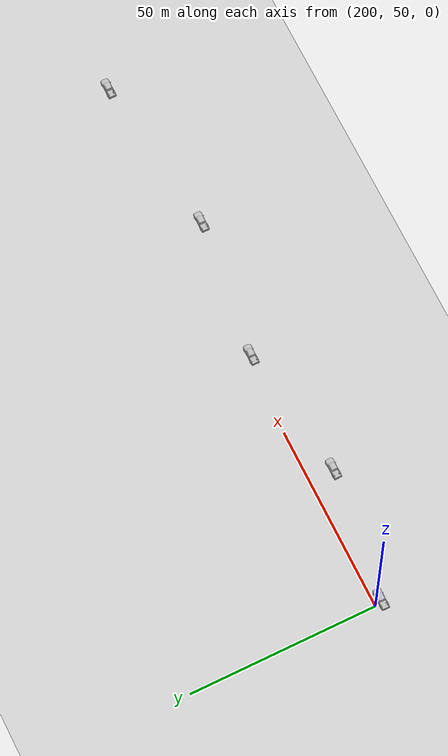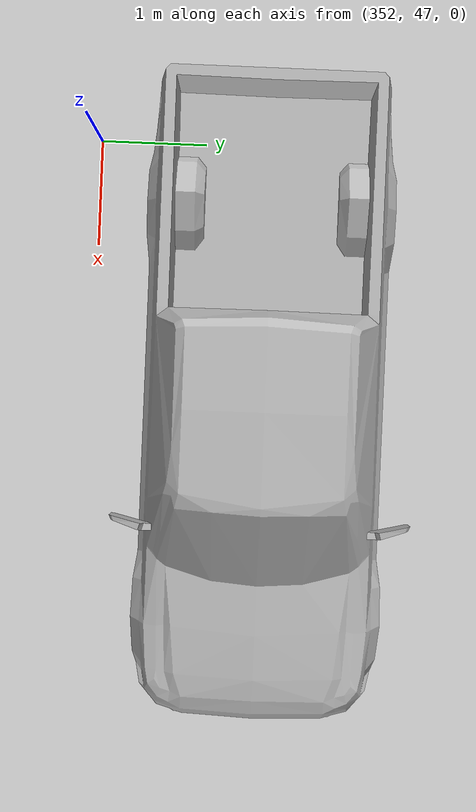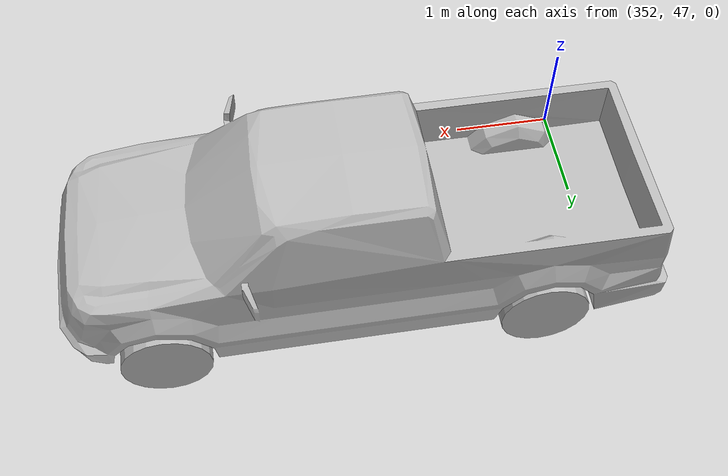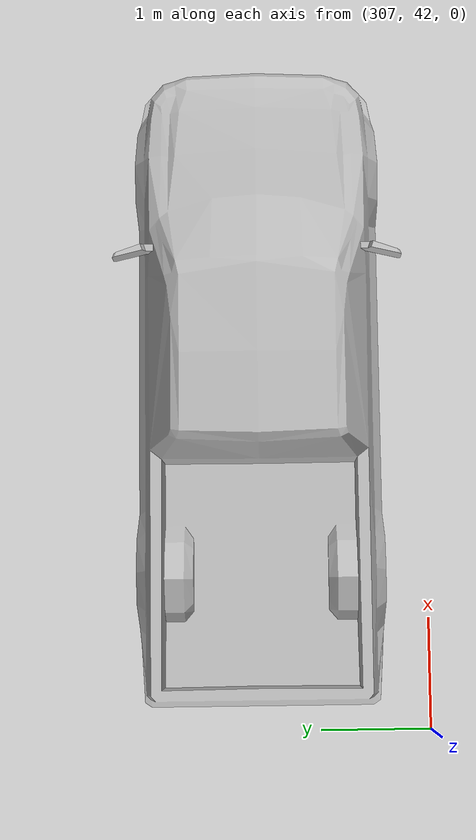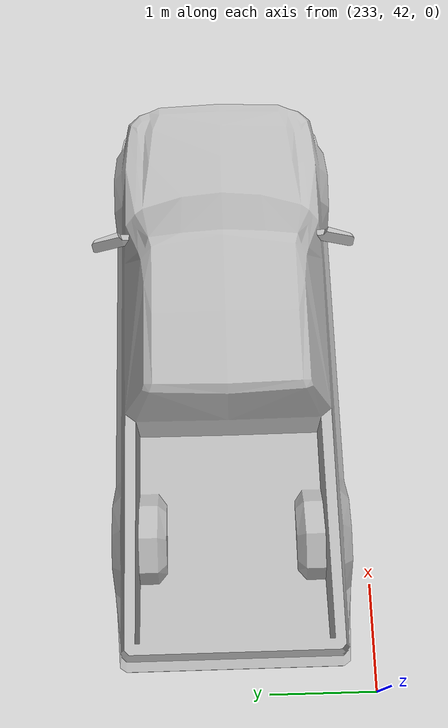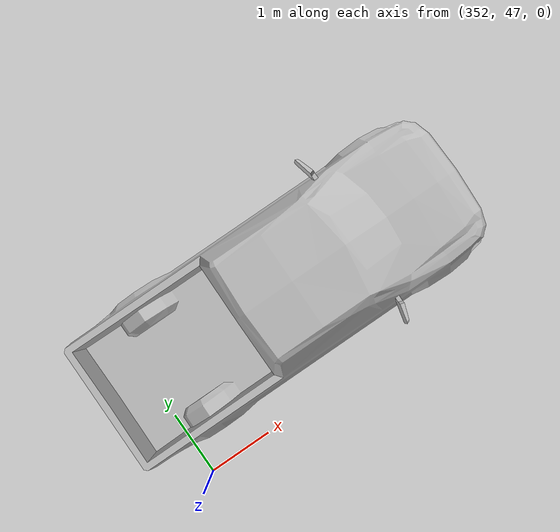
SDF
<sdf version="1.6">
 <world name="default">
  <light name="sun" type="directional">
   <pose>0 0 10 0 -0 0</pose>
   <diffuse>0.8 0.8 0.8 1</diffuse>
   <specular>0.2 0.2 0.2 1</specular>
   <attenuation>
    <range>1000</range>
    <constant>0.9</constant>
    <linear>0.01</linear>
    <quadratic>0.001</quadratic>
   </attenuation>
   <direction>-0.5 0.1 -0.9</direction>
  </light>
  <gravity>0 0 -9.8</gravity>
  <magnetic_field>6e-06 2.3e-05 -4.2e-05</magnetic_field>
  <atmosphere type="adiabatic"/>
  <physics name="default_physics" default="0" type="ode">
   <max_step_size>0.001</max_step_size>
   <real_time_factor>1</real_time_factor>
   <real_time_update_rate>1000</real_time_update_rate>
  </physics>
  <scene><ambient>0.4 0.4 0.4 1</ambient><background>0.7 0.7 0.7 1</background><shadows>1</shadows></scene>
  <spherical_coordinates>
   <surface_model>EARTH_WGS84</surface_model>
   <latitude_deg>0</latitude_deg>
   <longitude_deg>0</longitude_deg>
   <elevation>0</elevation>
   <heading_deg>0</heading_deg>
  </spherical_coordinates>
  <model name="pickup">
   <static>1</static>
   <link name="link">
    <collision name="collision">
     <pose>0 0 0 0 0 -1.5708</pose>
     <geometry><mesh><uri>model://pickup/meshes/pickup.dae</uri></mesh></geometry>
    </collision>
    <visual name="visual">
     <pose>0 0 0 0 0 -1.5708</pose>
     <geometry><mesh><uri>model://pickup/meshes/pickup.dae</uri></mesh></geometry>
    </visual>
   </link>
   <pose>272.172 48.2114 -0.03716 0 -0 0.001836</pose>
  </model>
  <model name="pickup_0">
   <static>1</static>
   <link name="link">
    <collision name="collision">
     <pose>0 0 0 0 0 -1.5708</pose>
     <geometry><mesh><uri>model://pickup/meshes/pickup.dae</uri></mesh></geometry>
    </collision>
    <visual name="visual">
     <pose>0 0 0 0 0 -1.5708</pose>
     <geometry><mesh><uri>model://pickup/meshes/pickup.dae</uri></mesh></geometry>
    </visual>
   </link>
   <pose>201.049 48.0803 -0.036166 0 -0 0.001943</pose>
  </model>
  <model name="pickup_1">
   <static>1</static>
   <link name="link">
    <collision name="collision">
     <pose>0 0 0 0 0 -1.5708</pose>
     <geometry><mesh><uri>model://pickup/meshes/pickup.dae</uri></mesh></geometry>
    </collision>
    <visual name="visual">
     <pose>0 0 0 0 0 -1.5708</pose>
     <geometry><mesh><uri>model://pickup/meshes/pickup.dae</uri></mesh></geometry>
    </visual>
   </link>
   <pose>236.148 43.3343 -0.030696 0 -0 0.00516</pose>
  </model>
  <model name="ground_plane">
   <static>1</static>
   <link name="link">
    <collision name="collision">
     <geometry><plane><normal>0 0 1</normal><size>100 100</size></plane></geometry>
     <surface>
      <contact><collide_bitmask>65535</collide_bitmask></contact>
      <friction><ode><mu>100</mu><mu2>50</mu2></ode></friction>
     </surface>
    </collision>
    <visual name="visual">
     <cast_shadows>0</cast_shadows>
     <geometry><plane><normal>0 0 1</normal><size>100 100</size></plane></geometry>
     <material>
      <script><uri>file://media/materials/scripts/gazebo.material</uri><name>Gazebo/Grey</name></script>
     </material>
    </visual>
   </link>
   <pose>-71.9057 50.7672 0 0 -0 0</pose>
  </model>
  <model name="pickup_2">
   <static>1</static>
   <link name="link">
    <collision name="collision">
     <pose>0 0 0 0 0 -1.5708</pose>
     <geometry><mesh><uri>model://pickup/meshes/pickup.dae</uri></mesh></geometry>
    </collision>
    <visual name="visual">
     <pose>0 0 0 0 0 -1.5708</pose>
     <geometry><mesh><uri>model://pickup/meshes/pickup.dae</uri></mesh></geometry>
    </visual>
   </link>
   <pose>310.218 43.5195 0 0 -0 0</pose>
  </model>
  <model name="pickup_3">
   <static>1</static>
   <link name="link">
    <collision name="collision">
     <pose>0 0 0 0 0 -1.5708</pose>
     <geometry><mesh><uri>model://pickup/meshes/pickup.dae</uri></mesh></geometry>
    </collision>
    <visual name="visual">
     <pose>0 0 0 0 0 -1.5708</pose>
     <geometry><mesh><uri>model://pickup/meshes/pickup.dae</uri></mesh></geometry>
    </visual>
   </link>
   <pose>354.538 48.6341 0 0 -0 0</pose>
  </model>
 </world>
</sdf>
